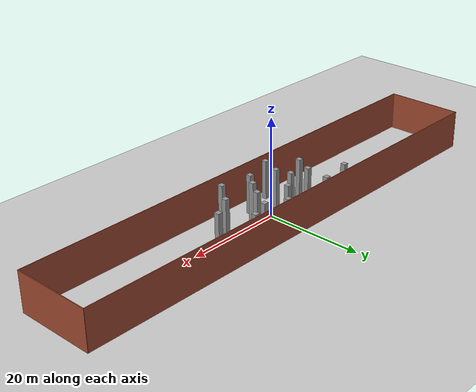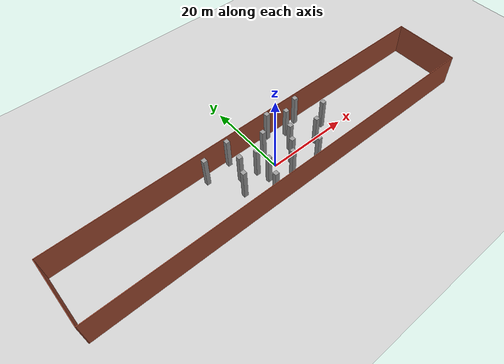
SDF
<sdf version="1.7">
 <world name="default">
  <model name="ground_plane">
   <static>1</static>
   <link name="link">
    <collision name="collision">
     <geometry><plane><normal>0 0 1</normal><size>100 100</size></plane></geometry>
     <surface>
      <contact><collide_bitmask>65535</collide_bitmask></contact>
      <friction><ode><mu>100</mu><mu2>50</mu2></ode></friction>
     </surface>
    </collision>
    <visual name="visual">
     <cast_shadows>0</cast_shadows>
     <geometry><plane><normal>0 0 1</normal><size>100 100</size></plane></geometry>
     <material>
      <script><uri>file://media/materials/scripts/gazebo.material</uri><name>Gazebo/Grey</name></script>
     </material>
    </visual>
   </link>
  </model>
  <model name="rect_slim_long">
   <link name="Wall_R">
    <pose>0 -8 0 0 -0 3.14159</pose>
    <visual name="Wall_R_Visual">
     <pose>0 0 4 0 -0 0</pose>
     <geometry><box><size>100 0.15 8</size></box></geometry>
     <material>
      <script><uri>file://media/materials/scripts/gazebo.material</uri><name>Gazebo/Bricks</name></script>
      <ambient>1 1 1 1</ambient>
      <shader type="pixel"/>
     </material>
     <meta><layer>0</layer></meta>
    </visual>
    <collision name="Wall_R_Collision">
     <pose>0 0 4 0 -0 0</pose>
     <geometry><box><size>100 0.15 8</size></box></geometry>
     <surface>
      <friction>
       <ode><mu>1</mu><mu2>1</mu2><fdir1>0 0 0</fdir1><slip1>0</slip1><slip2>0</slip2></ode>
       <torsional>
        <coefficient>1</coefficient>
        <patch_radius>0</patch_radius>
        <surface_radius>0</surface_radius>
        <use_patch_radius>1</use_patch_radius>
        <ode><slip>0</slip></ode>
       </torsional>
      </friction>
      <bounce><restitution_coefficient>0</restitution_coefficient><threshold>1e+06</threshold></bounce>
      <contact>
       <collide_without_contact>0</collide_without_contact>
       <collide_without_contact_bitmask>1</collide_without_contact_bitmask>
       <collide_bitmask>1</collide_bitmask>
       <ode>
        <soft_cfm>0</soft_cfm>
        <soft_erp>0.2</soft_erp>
        <kp>1e+13</kp>
        <kd>1</kd>
        <max_vel>0.01</max_vel>
        <min_depth>0</min_depth>
       </ode>
       <bullet>
        <split_impulse>1</split_impulse>
        <split_impulse_penetration_threshold>-0.01</split_impulse_penetration_threshold>
        <soft_cfm>0</soft_cfm>
        <soft_erp>0.2</soft_erp>
        <kp>1e+13</kp>
        <kd>1</kd>
       </bullet>
      </contact>
     </surface>
    </collision>
   </link>
   <link name="Wall_D">
    <pose>-50 0 0 0 0 -1.5708</pose>
    <visual name="Wall_D_Visual">
     <pose>0 0 4 0 -0 0</pose>
     <geometry><box><size>16.15 0.15 8</size></box></geometry>
     <material>
      <script><uri>file://media/materials/scripts/gazebo.material</uri><name>Gazebo/Bricks</name></script>
      <ambient>1 1 1 1</ambient>
      <shader type="pixel"/>
     </material>
     <meta><layer>0</layer></meta>
    </visual>
    <collision name="Wall_D_Collision">
     <pose>0 0 4 0 -0 0</pose>
     <geometry><box><size>16.15 0.15 8</size></box></geometry>
     <surface>
      <friction>
       <ode><mu>1</mu><mu2>1</mu2><fdir1>0 0 0</fdir1><slip1>0</slip1><slip2>0</slip2></ode>
       <torsional>
        <coefficient>1</coefficient>
        <patch_radius>0</patch_radius>
        <surface_radius>0</surface_radius>
        <use_patch_radius>1</use_patch_radius>
        <ode><slip>0</slip></ode>
       </torsional>
      </friction>
      <bounce><restitution_coefficient>0</restitution_coefficient><threshold>1e+06</threshold></bounce>
      <contact>
       <collide_without_contact>0</collide_without_contact>
       <collide_without_contact_bitmask>1</collide_without_contact_bitmask>
       <collide_bitmask>1</collide_bitmask>
       <ode>
        <soft_cfm>0</soft_cfm>
        <soft_erp>0.2</soft_erp>
        <kp>1e+13</kp>
        <kd>1</kd>
        <max_vel>0.01</max_vel>
        <min_depth>0</min_depth>
       </ode>
       <bullet>
        <split_impulse>1</split_impulse>
        <split_impulse_penetration_threshold>-0.01</split_impulse_penetration_threshold>
        <soft_cfm>0</soft_cfm>
        <soft_erp>0.2</soft_erp>
        <kp>1e+13</kp>
        <kd>1</kd>
       </bullet>
      </contact>
     </surface>
    </collision>
   </link>
   <link name="Wall_L">
    <pose>0 8 0 0 -0 0</pose>
    <visual name="Wall_L_Visual">
     <pose>0 0 4 0 -0 0</pose>
     <geometry><box><size>100 0.15 8</size></box></geometry>
     <material>
      <script><uri>file://media/materials/scripts/gazebo.material</uri><name>Gazebo/Bricks</name></script>
      <ambient>1 1 1 1</ambient>
      <shader type="pixel"/>
     </material>
     <meta><layer>0</layer></meta>
    </visual>
    <collision name="Wall_L_Collision">
     <pose>0 0 4 0 -0 0</pose>
     <geometry><box><size>100 0.15 8</size></box></geometry>
     <surface>
      <friction>
       <ode><mu>1</mu><mu2>1</mu2><fdir1>0 0 0</fdir1><slip1>0</slip1><slip2>0</slip2></ode>
       <torsional>
        <coefficient>1</coefficient>
        <patch_radius>0</patch_radius>
        <surface_radius>0</surface_radius>
        <use_patch_radius>1</use_patch_radius>
        <ode><slip>0</slip></ode>
       </torsional>
      </friction>
      <bounce><restitution_coefficient>0</restitution_coefficient><threshold>1e+06</threshold></bounce>
      <contact>
       <collide_without_contact>0</collide_without_contact>
       <collide_without_contact_bitmask>1</collide_without_contact_bitmask>
       <collide_bitmask>1</collide_bitmask>
       <ode>
        <soft_cfm>0</soft_cfm>
        <soft_erp>0.2</soft_erp>
        <kp>1e+13</kp>
        <kd>1</kd>
        <max_vel>0.01</max_vel>
        <min_depth>0</min_depth>
       </ode>
       <bullet>
        <split_impulse>1</split_impulse>
        <split_impulse_penetration_threshold>-0.01</split_impulse_penetration_threshold>
        <soft_cfm>0</soft_cfm>
        <soft_erp>0.2</soft_erp>
        <kp>1e+13</kp>
        <kd>1</kd>
       </bullet>
      </contact>
     </surface>
    </collision>
   </link>
   <link name="Wall_U">
    <pose>50 0 0 0 0 -1.5708</pose>
    <visual name="Wall_U_Visual">
     <pose>0 0 4 0 -0 0</pose>
     <geometry><box><size>16.15 0.15 8</size></box></geometry>
     <material>
      <script><uri>file://media/materials/scripts/gazebo.material</uri><name>Gazebo/Bricks</name></script>
      <ambient>1 1 1 1</ambient>
      <shader type="pixel"/>
     </material>
     <meta><layer>0</layer></meta>
    </visual>
    <collision name="Wall_U_Collision">
     <pose>0 0 4 0 -0 0</pose>
     <geometry><box><size>16.15 0.15 8</size></box></geometry>
     <surface>
      <friction>
       <ode><mu>1</mu><mu2>1</mu2><fdir1>0 0 0</fdir1><slip1>0</slip1><slip2>0</slip2></ode>
       <torsional>
        <coefficient>1</coefficient>
        <patch_radius>0</patch_radius>
        <surface_radius>0</surface_radius>
        <use_patch_radius>1</use_patch_radius>
        <ode><slip>0</slip></ode>
       </torsional>
      </friction>
      <bounce><restitution_coefficient>0</restitution_coefficient><threshold>1e+06</threshold></bounce>
      <contact>
       <collide_without_contact>0</collide_without_contact>
       <collide_without_contact_bitmask>1</collide_without_contact_bitmask>
       <collide_bitmask>1</collide_bitmask>
       <ode>
        <soft_cfm>0</soft_cfm>
        <soft_erp>0.2</soft_erp>
        <kp>1e+13</kp>
        <kd>1</kd>
        <max_vel>0.01</max_vel>
        <min_depth>0</min_depth>
       </ode>
       <bullet>
        <split_impulse>1</split_impulse>
        <split_impulse_penetration_threshold>-0.01</split_impulse_penetration_threshold>
        <soft_cfm>0</soft_cfm>
        <soft_erp>0.2</soft_erp>
        <kp>1e+13</kp>
        <kd>1</kd>
       </bullet>
      </contact>
     </surface>
    </collision>
   </link>
   <static>1</static>
  </model>
  <model name="unit_box_static42_clone_35_clone_12">
   <link name="link">
    <inertial>
     <mass>1</mass>
     <inertia>
      <ixx>0.166667</ixx>
      <ixy>0</ixy>
      <ixz>0</ixz>
      <iyy>0.166667</iyy>
      <iyz>0</iyz>
      <izz>0.166667</izz>
     </inertia>
    </inertial>
    <visual name="visual">
     <geometry><box><size>1 1 8</size></box></geometry>
     <material>
      <script><name>Gazebo/Grey</name><uri>file://media/materials/scripts/gazebo.material</uri></script>
      <shader type="pixel"/>
     </material>
    </visual>
    <collision name="collision">
     <geometry><box><size>1 1 8</size></box></geometry>
     <surface>
      <friction>
       <ode><mu>1</mu><mu2>1</mu2><fdir1>0 0 0</fdir1><slip1>0</slip1><slip2>0</slip2></ode>
       <torsional>
        <coefficient>1</coefficient>
        <patch_radius>0</patch_radius>
        <surface_radius>0</surface_radius>
        <use_patch_radius>1</use_patch_radius>
        <ode><slip>0</slip></ode>
       </torsional>
      </friction>
      <bounce><restitution_coefficient>0</restitution_coefficient><threshold>1e+06</threshold></bounce>
      <contact>
       <collide_without_contact>0</collide_without_contact>
       <collide_without_contact_bitmask>1</collide_without_contact_bitmask>
       <collide_bitmask>1</collide_bitmask>
       <ode>
        <soft_cfm>0</soft_cfm>
        <soft_erp>0.2</soft_erp>
        <kp>1e+13</kp>
        <kd>1</kd>
        <max_vel>0.01</max_vel>
        <min_depth>0</min_depth>
       </ode>
       <bullet>
        <split_impulse>1</split_impulse>
        <split_impulse_penetration_threshold>-0.01</split_impulse_penetration_threshold>
        <soft_cfm>0</soft_cfm>
        <soft_erp>0.2</soft_erp>
        <kp>1e+13</kp>
        <kd>1</kd>
       </bullet>
      </contact>
     </surface>
    </collision>
   </link>
   <static>1</static>
   <pose>5.73464 1.61226 4 0 -0 0</pose>
  </model>
  <model name="unit_box_static42_clone_35_clone_14">
   <link name="link">
    <inertial>
     <mass>1</mass>
     <inertia>
      <ixx>0.166667</ixx>
      <ixy>0</ixy>
      <ixz>0</ixz>
      <iyy>0.166667</iyy>
      <iyz>0</iyz>
      <izz>0.166667</izz>
     </inertia>
    </inertial>
    <visual name="visual">
     <geometry><box><size>1 1 8</size></box></geometry>
     <material>
      <script><name>Gazebo/Grey</name><uri>file://media/materials/scripts/gazebo.material</uri></script>
      <shader type="pixel"/>
     </material>
    </visual>
    <collision name="collision">
     <geometry><box><size>1 1 8</size></box></geometry>
     <surface>
      <friction>
       <ode><mu>1</mu><mu2>1</mu2><fdir1>0 0 0</fdir1><slip1>0</slip1><slip2>0</slip2></ode>
       <torsional>
        <coefficient>1</coefficient>
        <patch_radius>0</patch_radius>
        <surface_radius>0</surface_radius>
        <use_patch_radius>1</use_patch_radius>
        <ode><slip>0</slip></ode>
       </torsional>
      </friction>
      <bounce><restitution_coefficient>0</restitution_coefficient><threshold>1e+06</threshold></bounce>
      <contact>
       <collide_without_contact>0</collide_without_contact>
       <collide_without_contact_bitmask>1</collide_without_contact_bitmask>
       <collide_bitmask>1</collide_bitmask>
       <ode>
        <soft_cfm>0</soft_cfm>
        <soft_erp>0.2</soft_erp>
        <kp>1e+13</kp>
        <kd>1</kd>
        <max_vel>0.01</max_vel>
        <min_depth>0</min_depth>
       </ode>
       <bullet>
        <split_impulse>1</split_impulse>
        <split_impulse_penetration_threshold>-0.01</split_impulse_penetration_threshold>
        <soft_cfm>0</soft_cfm>
        <soft_erp>0.2</soft_erp>
        <kp>1e+13</kp>
        <kd>1</kd>
       </bullet>
      </contact>
     </surface>
    </collision>
   </link>
   <static>1</static>
   <pose>0 4 4 0 -0 0</pose>
  </model>
  <model name="unit_box_static42_clone_35_clone_15">
   <link name="link">
    <inertial>
     <mass>1</mass>
     <inertia>
      <ixx>0.166667</ixx>
      <ixy>0</ixy>
      <ixz>0</ixz>
      <iyy>0.166667</iyy>
      <iyz>0</iyz>
      <izz>0.166667</izz>
     </inertia>
    </inertial>
    <visual name="visual">
     <geometry><box><size>1 1 8</size></box></geometry>
     <material>
      <script><name>Gazebo/Grey</name><uri>file://media/materials/scripts/gazebo.material</uri></script>
      <shader type="pixel"/>
     </material>
    </visual>
    <collision name="collision">
     <geometry><box><size>1 1 8</size></box></geometry>
     <surface>
      <friction>
       <ode><mu>1</mu><mu2>1</mu2><fdir1>0 0 0</fdir1><slip1>0</slip1><slip2>0</slip2></ode>
       <torsional>
        <coefficient>1</coefficient>
        <patch_radius>0</patch_radius>
        <surface_radius>0</surface_radius>
        <use_patch_radius>1</use_patch_radius>
        <ode><slip>0</slip></ode>
       </torsional>
      </friction>
      <bounce><restitution_coefficient>0</restitution_coefficient><threshold>1e+06</threshold></bounce>
      <contact>
       <collide_without_contact>0</collide_without_contact>
       <collide_without_contact_bitmask>1</collide_without_contact_bitmask>
       <collide_bitmask>1</collide_bitmask>
       <ode>
        <soft_cfm>0</soft_cfm>
        <soft_erp>0.2</soft_erp>
        <kp>1e+13</kp>
        <kd>1</kd>
        <max_vel>0.01</max_vel>
        <min_depth>0</min_depth>
       </ode>
       <bullet>
        <split_impulse>1</split_impulse>
        <split_impulse_penetration_threshold>-0.01</split_impulse_penetration_threshold>
        <soft_cfm>0</soft_cfm>
        <soft_erp>0.2</soft_erp>
        <kp>1e+13</kp>
        <kd>1</kd>
       </bullet>
      </contact>
     </surface>
    </collision>
   </link>
   <static>1</static>
   <pose>12 7 4 0 -0 0</pose>
  </model>
  <model name="unit_box_static42_clone_35_clone_16">
   <link name="link">
    <inertial>
     <mass>1</mass>
     <inertia>
      <ixx>0.166667</ixx>
      <ixy>0</ixy>
      <ixz>0</ixz>
      <iyy>0.166667</iyy>
      <iyz>0</iyz>
      <izz>0.166667</izz>
     </inertia>
    </inertial>
    <visual name="visual">
     <geometry><box><size>1 1 8</size></box></geometry>
     <material>
      <script><name>Gazebo/Grey</name><uri>file://media/materials/scripts/gazebo.material</uri></script>
      <shader type="pixel"/>
     </material>
    </visual>
    <collision name="collision">
     <geometry><box><size>1 1 8</size></box></geometry>
     <surface>
      <friction>
       <ode><mu>1</mu><mu2>1</mu2><fdir1>0 0 0</fdir1><slip1>0</slip1><slip2>0</slip2></ode>
       <torsional>
        <coefficient>1</coefficient>
        <patch_radius>0</patch_radius>
        <surface_radius>0</surface_radius>
        <use_patch_radius>1</use_patch_radius>
        <ode><slip>0</slip></ode>
       </torsional>
      </friction>
      <bounce><restitution_coefficient>0</restitution_coefficient><threshold>1e+06</threshold></bounce>
      <contact>
       <collide_without_contact>0</collide_without_contact>
       <collide_without_contact_bitmask>1</collide_without_contact_bitmask>
       <collide_bitmask>1</collide_bitmask>
       <ode>
        <soft_cfm>0</soft_cfm>
        <soft_erp>0.2</soft_erp>
        <kp>1e+13</kp>
        <kd>1</kd>
        <max_vel>0.01</max_vel>
        <min_depth>0</min_depth>
       </ode>
       <bullet>
        <split_impulse>1</split_impulse>
        <split_impulse_penetration_threshold>-0.01</split_impulse_penetration_threshold>
        <soft_cfm>0</soft_cfm>
        <soft_erp>0.2</soft_erp>
        <kp>1e+13</kp>
        <kd>1</kd>
       </bullet>
      </contact>
     </surface>
    </collision>
   </link>
   <static>1</static>
   <pose>1.50816 -4 4 0 -0 0</pose>
  </model>
  <model name="unit_box_static42_clone_35_clone_17">
   <link name="link">
    <inertial>
     <mass>1</mass>
     <inertia>
      <ixx>0.166667</ixx>
      <ixy>0</ixy>
      <ixz>0</ixz>
      <iyy>0.166667</iyy>
      <iyz>0</iyz>
      <izz>0.166667</izz>
     </inertia>
    </inertial>
    <visual name="visual">
     <geometry><box><size>1 1 8</size></box></geometry>
     <material>
      <script><name>Gazebo/Grey</name><uri>file://media/materials/scripts/gazebo.material</uri></script>
      <shader type="pixel"/>
     </material>
    </visual>
    <collision name="collision">
     <geometry><box><size>1 1 8</size></box></geometry>
     <surface>
      <friction>
       <ode><mu>1</mu><mu2>1</mu2><fdir1>0 0 0</fdir1><slip1>0</slip1><slip2>0</slip2></ode>
       <torsional>
        <coefficient>1</coefficient>
        <patch_radius>0</patch_radius>
        <surface_radius>0</surface_radius>
        <use_patch_radius>1</use_patch_radius>
        <ode><slip>0</slip></ode>
       </torsional>
      </friction>
      <bounce><restitution_coefficient>0</restitution_coefficient><threshold>1e+06</threshold></bounce>
      <contact>
       <collide_without_contact>0</collide_without_contact>
       <collide_without_contact_bitmask>1</collide_without_contact_bitmask>
       <collide_bitmask>1</collide_bitmask>
       <ode>
        <soft_cfm>0</soft_cfm>
        <soft_erp>0.2</soft_erp>
        <kp>1e+13</kp>
        <kd>1</kd>
        <max_vel>0.01</max_vel>
        <min_depth>0</min_depth>
       </ode>
       <bullet>
        <split_impulse>1</split_impulse>
        <split_impulse_penetration_threshold>-0.01</split_impulse_penetration_threshold>
        <soft_cfm>0</soft_cfm>
        <soft_erp>0.2</soft_erp>
        <kp>1e+13</kp>
        <kd>1</kd>
       </bullet>
      </contact>
     </surface>
    </collision>
   </link>
   <static>1</static>
   <pose>8 -5 4 0 -0 0</pose>
  </model>
  <model name="unit_box_static42_clone_35_clone_18">
   <link name="link">
    <inertial>
     <mass>1</mass>
     <inertia>
      <ixx>0.166667</ixx>
      <ixy>0</ixy>
      <ixz>0</ixz>
      <iyy>0.166667</iyy>
      <iyz>0</iyz>
      <izz>0.166667</izz>
     </inertia>
    </inertial>
    <visual name="visual">
     <geometry><box><size>1 1 8</size></box></geometry>
     <material>
      <script><name>Gazebo/Grey</name><uri>file://media/materials/scripts/gazebo.material</uri></script>
      <shader type="pixel"/>
     </material>
    </visual>
    <collision name="collision">
     <geometry><box><size>1 1 8</size></box></geometry>
     <surface>
      <friction>
       <ode><mu>1</mu><mu2>1</mu2><fdir1>0 0 0</fdir1><slip1>0</slip1><slip2>0</slip2></ode>
       <torsional>
        <coefficient>1</coefficient>
        <patch_radius>0</patch_radius>
        <surface_radius>0</surface_radius>
        <use_patch_radius>1</use_patch_radius>
        <ode><slip>0</slip></ode>
       </torsional>
      </friction>
      <bounce><restitution_coefficient>0</restitution_coefficient><threshold>1e+06</threshold></bounce>
      <contact>
       <collide_without_contact>0</collide_without_contact>
       <collide_without_contact_bitmask>1</collide_without_contact_bitmask>
       <collide_bitmask>1</collide_bitmask>
       <ode>
        <soft_cfm>0</soft_cfm>
        <soft_erp>0.2</soft_erp>
        <kp>1e+13</kp>
        <kd>1</kd>
        <max_vel>0.01</max_vel>
        <min_depth>0</min_depth>
       </ode>
       <bullet>
        <split_impulse>1</split_impulse>
        <split_impulse_penetration_threshold>-0.01</split_impulse_penetration_threshold>
        <soft_cfm>0</soft_cfm>
        <soft_erp>0.2</soft_erp>
        <kp>1e+13</kp>
        <kd>1</kd>
       </bullet>
      </contact>
     </surface>
    </collision>
   </link>
   <static>1</static>
   <pose>3.50845 -1.50391 4 0 -0 0</pose>
  </model>
  <model name="unit_box_static42_clone_35_clone_19">
   <link name="link">
    <inertial>
     <mass>1</mass>
     <inertia>
      <ixx>0.166667</ixx>
      <ixy>0</ixy>
      <ixz>0</ixz>
      <iyy>0.166667</iyy>
      <iyz>0</iyz>
      <izz>0.166667</izz>
     </inertia>
    </inertial>
    <visual name="visual">
     <geometry><box><size>1 1 8</size></box></geometry>
     <material>
      <script><name>Gazebo/Grey</name><uri>file://media/materials/scripts/gazebo.material</uri></script>
      <shader type="pixel"/>
     </material>
    </visual>
    <collision name="collision">
     <geometry><box><size>1 1 8</size></box></geometry>
     <surface>
      <friction>
       <ode><mu>1</mu><mu2>1</mu2><fdir1>0 0 0</fdir1><slip1>0</slip1><slip2>0</slip2></ode>
       <torsional>
        <coefficient>1</coefficient>
        <patch_radius>0</patch_radius>
        <surface_radius>0</surface_radius>
        <use_patch_radius>1</use_patch_radius>
        <ode><slip>0</slip></ode>
       </torsional>
      </friction>
      <bounce><restitution_coefficient>0</restitution_coefficient><threshold>1e+06</threshold></bounce>
      <contact>
       <collide_without_contact>0</collide_without_contact>
       <collide_without_contact_bitmask>1</collide_without_contact_bitmask>
       <collide_bitmask>1</collide_bitmask>
       <ode>
        <soft_cfm>0</soft_cfm>
        <soft_erp>0.2</soft_erp>
        <kp>1e+13</kp>
        <kd>1</kd>
        <max_vel>0.01</max_vel>
        <min_depth>0</min_depth>
       </ode>
       <bullet>
        <split_impulse>1</split_impulse>
        <split_impulse_penetration_threshold>-0.01</split_impulse_penetration_threshold>
        <soft_cfm>0</soft_cfm>
        <soft_erp>0.2</soft_erp>
        <kp>1e+13</kp>
        <kd>1</kd>
       </bullet>
      </contact>
     </surface>
    </collision>
   </link>
   <static>1</static>
   <pose>-7.43587 7 4 0 -0 0</pose>
  </model>
  <model name="unit_box_static42_clone_35_clone_20">
   <link name="link">
    <inertial>
     <mass>1</mass>
     <inertia>
      <ixx>0.166667</ixx>
      <ixy>0</ixy>
      <ixz>0</ixz>
      <iyy>0.166667</iyy>
      <iyz>0</iyz>
      <izz>0.166667</izz>
     </inertia>
    </inertial>
    <visual name="visual">
     <geometry><box><size>1 1 8</size></box></geometry>
     <material>
      <script><name>Gazebo/Grey</name><uri>file://media/materials/scripts/gazebo.material</uri></script>
      <shader type="pixel"/>
     </material>
    </visual>
    <collision name="collision">
     <geometry><box><size>1 1 8</size></box></geometry>
     <surface>
      <friction>
       <ode><mu>1</mu><mu2>1</mu2><fdir1>0 0 0</fdir1><slip1>0</slip1><slip2>0</slip2></ode>
       <torsional>
        <coefficient>1</coefficient>
        <patch_radius>0</patch_radius>
        <surface_radius>0</surface_radius>
        <use_patch_radius>1</use_patch_radius>
        <ode><slip>0</slip></ode>
       </torsional>
      </friction>
      <bounce><restitution_coefficient>0</restitution_coefficient><threshold>1e+06</threshold></bounce>
      <contact>
       <collide_without_contact>0</collide_without_contact>
       <collide_without_contact_bitmask>1</collide_without_contact_bitmask>
       <collide_bitmask>1</collide_bitmask>
       <ode>
        <soft_cfm>0</soft_cfm>
        <soft_erp>0.2</soft_erp>
        <kp>1e+13</kp>
        <kd>1</kd>
        <max_vel>0.01</max_vel>
        <min_depth>0</min_depth>
       </ode>
       <bullet>
        <split_impulse>1</split_impulse>
        <split_impulse_penetration_threshold>-0.01</split_impulse_penetration_threshold>
        <soft_cfm>0</soft_cfm>
        <soft_erp>0.2</soft_erp>
        <kp>1e+13</kp>
        <kd>1</kd>
       </bullet>
      </contact>
     </surface>
    </collision>
   </link>
   <static>1</static>
   <pose>-14 6 4 0 -0 0</pose>
  </model>
  <model name="unit_box_static42_clone_35_clone_21">
   <link name="link">
    <inertial>
     <mass>1</mass>
     <inertia>
      <ixx>0.166667</ixx>
      <ixy>0</ixy>
      <ixz>0</ixz>
      <iyy>0.166667</iyy>
      <iyz>0</iyz>
      <izz>0.166667</izz>
     </inertia>
    </inertial>
    <visual name="visual">
     <geometry><box><size>1 1 8</size></box></geometry>
     <material>
      <script><name>Gazebo/Grey</name><uri>file://media/materials/scripts/gazebo.material</uri></script>
      <shader type="pixel"/>
     </material>
    </visual>
    <collision name="collision">
     <geometry><box><size>1 1 8</size></box></geometry>
     <surface>
      <friction>
       <ode><mu>1</mu><mu2>1</mu2><fdir1>0 0 0</fdir1><slip1>0</slip1><slip2>0</slip2></ode>
       <torsional>
        <coefficient>1</coefficient>
        <patch_radius>0</patch_radius>
        <surface_radius>0</surface_radius>
        <use_patch_radius>1</use_patch_radius>
        <ode><slip>0</slip></ode>
       </torsional>
      </friction>
      <bounce><restitution_coefficient>0</restitution_coefficient><threshold>1e+06</threshold></bounce>
      <contact>
       <collide_without_contact>0</collide_without_contact>
       <collide_without_contact_bitmask>1</collide_without_contact_bitmask>
       <collide_bitmask>1</collide_bitmask>
       <ode>
        <soft_cfm>0</soft_cfm>
        <soft_erp>0.2</soft_erp>
        <kp>1e+13</kp>
        <kd>1</kd>
        <max_vel>0.01</max_vel>
        <min_depth>0</min_depth>
       </ode>
       <bullet>
        <split_impulse>1</split_impulse>
        <split_impulse_penetration_threshold>-0.01</split_impulse_penetration_threshold>
        <soft_cfm>0</soft_cfm>
        <soft_erp>0.2</soft_erp>
        <kp>1e+13</kp>
        <kd>1</kd>
       </bullet>
      </contact>
     </surface>
    </collision>
   </link>
   <static>1</static>
   <pose>-3.48153 -2.01603 4 0 -0 0</pose>
  </model>
  <model name="unit_box_static42_clone_35_clone_22">
   <link name="link">
    <inertial>
     <mass>1</mass>
     <inertia>
      <ixx>0.166667</ixx>
      <ixy>0</ixy>
      <ixz>0</ixz>
      <iyy>0.166667</iyy>
      <iyz>0</iyz>
      <izz>0.166667</izz>
     </inertia>
    </inertial>
    <visual name="visual">
     <geometry><box><size>1 1 8</size></box></geometry>
     <material>
      <script><name>Gazebo/Grey</name><uri>file://media/materials/scripts/gazebo.material</uri></script>
      <shader type="pixel"/>
     </material>
    </visual>
    <collision name="collision">
     <geometry><box><size>1 1 8</size></box></geometry>
     <surface>
      <friction>
       <ode><mu>1</mu><mu2>1</mu2><fdir1>0 0 0</fdir1><slip1>0</slip1><slip2>0</slip2></ode>
       <torsional>
        <coefficient>1</coefficient>
        <patch_radius>0</patch_radius>
        <surface_radius>0</surface_radius>
        <use_patch_radius>1</use_patch_radius>
        <ode><slip>0</slip></ode>
       </torsional>
      </friction>
      <bounce><restitution_coefficient>0</restitution_coefficient><threshold>1e+06</threshold></bounce>
      <contact>
       <collide_without_contact>0</collide_without_contact>
       <collide_without_contact_bitmask>1</collide_without_contact_bitmask>
       <collide_bitmask>1</collide_bitmask>
       <ode>
        <soft_cfm>0</soft_cfm>
        <soft_erp>0.2</soft_erp>
        <kp>1e+13</kp>
        <kd>1</kd>
        <max_vel>0.01</max_vel>
        <min_depth>0</min_depth>
       </ode>
       <bullet>
        <split_impulse>1</split_impulse>
        <split_impulse_penetration_threshold>-0.01</split_impulse_penetration_threshold>
        <soft_cfm>0</soft_cfm>
        <soft_erp>0.2</soft_erp>
        <kp>1e+13</kp>
        <kd>1</kd>
       </bullet>
      </contact>
     </surface>
    </collision>
   </link>
   <static>1</static>
   <pose>-8 2 4 0 -0 0</pose>
  </model>
  <model name="unit_box_static42_clone_35_clone_25">
   <link name="link">
    <inertial>
     <mass>1</mass>
     <inertia>
      <ixx>0.166667</ixx>
      <ixy>0</ixy>
      <ixz>0</ixz>
      <iyy>0.166667</iyy>
      <iyz>0</iyz>
      <izz>0.166667</izz>
     </inertia>
    </inertial>
    <visual name="visual">
     <geometry><box><size>1 1 8</size></box></geometry>
     <material>
      <script><name>Gazebo/Grey</name><uri>file://media/materials/scripts/gazebo.material</uri></script>
      <shader type="pixel"/>
     </material>
    </visual>
    <collision name="collision">
     <geometry><box><size>1 1 8</size></box></geometry>
     <surface>
      <friction>
       <ode><mu>1</mu><mu2>1</mu2><fdir1>0 0 0</fdir1><slip1>0</slip1><slip2>0</slip2></ode>
       <torsional>
        <coefficient>1</coefficient>
        <patch_radius>0</patch_radius>
        <surface_radius>0</surface_radius>
        <use_patch_radius>1</use_patch_radius>
        <ode><slip>0</slip></ode>
       </torsional>
      </friction>
      <bounce><restitution_coefficient>0</restitution_coefficient><threshold>1e+06</threshold></bounce>
      <contact>
       <collide_without_contact>0</collide_without_contact>
       <collide_without_contact_bitmask>1</collide_without_contact_bitmask>
       <collide_bitmask>1</collide_bitmask>
       <ode>
        <soft_cfm>0</soft_cfm>
        <soft_erp>0.2</soft_erp>
        <kp>1e+13</kp>
        <kd>1</kd>
        <max_vel>0.01</max_vel>
        <min_depth>0</min_depth>
       </ode>
       <bullet>
        <split_impulse>1</split_impulse>
        <split_impulse_penetration_threshold>-0.01</split_impulse_penetration_threshold>
        <soft_cfm>0</soft_cfm>
        <soft_erp>0.2</soft_erp>
        <kp>1e+13</kp>
        <kd>1</kd>
       </bullet>
      </contact>
     </surface>
    </collision>
   </link>
   <static>1</static>
   <pose>-5 -6 4 0 -0 0</pose>
  </model>
  <model name="unit_box_static42_clone_35_clone_42">
   <link name="link">
    <inertial>
     <mass>1</mass>
     <inertia>
      <ixx>0.166667</ixx>
      <ixy>0</ixy>
      <ixz>0</ixz>
      <iyy>0.166667</iyy>
      <iyz>0</iyz>
      <izz>0.166667</izz>
     </inertia>
    </inertial>
    <visual name="visual">
     <geometry><box><size>1 1 8</size></box></geometry>
     <material>
      <script><name>Gazebo/Grey</name><uri>file://media/materials/scripts/gazebo.material</uri></script>
      <shader type="pixel"/>
     </material>
    </visual>
    <collision name="collision">
     <geometry><box><size>1 1 8</size></box></geometry>
     <surface>
      <friction>
       <ode><mu>1</mu><mu2>1</mu2><fdir1>0 0 0</fdir1><slip1>0</slip1><slip2>0</slip2></ode>
       <torsional>
        <coefficient>1</coefficient>
        <patch_radius>0</patch_radius>
        <surface_radius>0</surface_radius>
        <use_patch_radius>1</use_patch_radius>
        <ode><slip>0</slip></ode>
       </torsional>
      </friction>
      <bounce><restitution_coefficient>0</restitution_coefficient><threshold>1e+06</threshold></bounce>
      <contact>
       <collide_without_contact>0</collide_without_contact>
       <collide_without_contact_bitmask>1</collide_without_contact_bitmask>
       <collide_bitmask>1</collide_bitmask>
       <ode>
        <soft_cfm>0</soft_cfm>
        <soft_erp>0.2</soft_erp>
        <kp>1e+13</kp>
        <kd>1</kd>
        <max_vel>0.01</max_vel>
        <min_depth>0</min_depth>
       </ode>
       <bullet>
        <split_impulse>1</split_impulse>
        <split_impulse_penetration_threshold>-0.01</split_impulse_penetration_threshold>
        <soft_cfm>0</soft_cfm>
        <soft_erp>0.2</soft_erp>
        <kp>1e+13</kp>
        <kd>1</kd>
       </bullet>
      </contact>
     </surface>
    </collision>
   </link>
   <static>1</static>
   <pose>-4.28403 1 4 0 -0 0</pose>
  </model>
  <model name="unit_box_static42_clone_35_clone_43">
   <link name="link">
    <inertial>
     <mass>1</mass>
     <inertia>
      <ixx>0.166667</ixx>
      <ixy>0</ixy>
      <ixz>0</ixz>
      <iyy>0.166667</iyy>
      <iyz>0</iyz>
      <izz>0.166667</izz>
     </inertia>
    </inertial>
    <visual name="visual">
     <geometry><box><size>1 1 8</size></box></geometry>
     <material>
      <script><name>Gazebo/Grey</name><uri>file://media/materials/scripts/gazebo.material</uri></script>
      <shader type="pixel"/>
     </material>
    </visual>
    <collision name="collision">
     <geometry><box><size>1 1 8</size></box></geometry>
     <surface>
      <friction>
       <ode><mu>1</mu><mu2>1</mu2><fdir1>0 0 0</fdir1><slip1>0</slip1><slip2>0</slip2></ode>
       <torsional>
        <coefficient>1</coefficient>
        <patch_radius>0</patch_radius>
        <surface_radius>0</surface_radius>
        <use_patch_radius>1</use_patch_radius>
        <ode><slip>0</slip></ode>
       </torsional>
      </friction>
      <bounce><restitution_coefficient>0</restitution_coefficient><threshold>1e+06</threshold></bounce>
      <contact>
       <collide_without_contact>0</collide_without_contact>
       <collide_without_contact_bitmask>1</collide_without_contact_bitmask>
       <collide_bitmask>1</collide_bitmask>
       <ode>
        <soft_cfm>0</soft_cfm>
        <soft_erp>0.2</soft_erp>
        <kp>1e+13</kp>
        <kd>1</kd>
        <max_vel>0.01</max_vel>
        <min_depth>0</min_depth>
       </ode>
       <bullet>
        <split_impulse>1</split_impulse>
        <split_impulse_penetration_threshold>-0.01</split_impulse_penetration_threshold>
        <soft_cfm>0</soft_cfm>
        <soft_erp>0.2</soft_erp>
        <kp>1e+13</kp>
        <kd>1</kd>
       </bullet>
      </contact>
     </surface>
    </collision>
   </link>
   <static>1</static>
   <pose>-9.85472 -1.64309 4 0 -0 0</pose>
  </model>
  <model name="unit_box_static42_clone_35_clone_45">
   <link name="link">
    <inertial>
     <mass>1</mass>
     <inertia>
      <ixx>0.166667</ixx>
      <ixy>0</ixy>
      <ixz>0</ixz>
      <iyy>0.166667</iyy>
      <iyz>0</iyz>
      <izz>0.166667</izz>
     </inertia>
    </inertial>
    <visual name="visual">
     <geometry><box><size>1 1 8</size></box></geometry>
     <material>
      <script><name>Gazebo/Grey</name><uri>file://media/materials/scripts/gazebo.material</uri></script>
      <shader type="pixel"/>
     </material>
    </visual>
    <collision name="collision">
     <geometry><box><size>1 1 8</size></box></geometry>
     <surface>
      <friction>
       <ode><mu>1</mu><mu2>1</mu2><fdir1>0 0 0</fdir1><slip1>0</slip1><slip2>0</slip2></ode>
       <torsional>
        <coefficient>1</coefficient>
        <patch_radius>0</patch_radius>
        <surface_radius>0</surface_radius>
        <use_patch_radius>1</use_patch_radius>
        <ode><slip>0</slip></ode>
       </torsional>
      </friction>
      <bounce><restitution_coefficient>0</restitution_coefficient><threshold>1e+06</threshold></bounce>
      <contact>
       <collide_without_contact>0</collide_without_contact>
       <collide_without_contact_bitmask>1</collide_without_contact_bitmask>
       <collide_bitmask>1</collide_bitmask>
       <ode>
        <soft_cfm>0</soft_cfm>
        <soft_erp>0.2</soft_erp>
        <kp>1e+13</kp>
        <kd>1</kd>
        <max_vel>0.01</max_vel>
        <min_depth>0</min_depth>
       </ode>
       <bullet>
        <split_impulse>1</split_impulse>
        <split_impulse_penetration_threshold>-0.01</split_impulse_penetration_threshold>
        <soft_cfm>0</soft_cfm>
        <soft_erp>0.2</soft_erp>
        <kp>1e+13</kp>
        <kd>1</kd>
       </bullet>
      </contact>
     </surface>
    </collision>
   </link>
   <static>1</static>
   <pose>11.4455 -0.693428 4 0 -0 0</pose>
  </model>
  <model name="unit_box_static42_clone_35_clone_46">
   <link name="link">
    <inertial>
     <mass>1</mass>
     <inertia>
      <ixx>0.166667</ixx>
      <ixy>0</ixy>
      <ixz>0</ixz>
      <iyy>0.166667</iyy>
      <iyz>0</iyz>
      <izz>0.166667</izz>
     </inertia>
    </inertial>
    <visual name="visual">
     <geometry><box><size>1 1 8</size></box></geometry>
     <material>
      <script><name>Gazebo/Grey</name><uri>file://media/materials/scripts/gazebo.material</uri></script>
      <shader type="pixel"/>
     </material>
    </visual>
    <collision name="collision">
     <geometry><box><size>1 1 8</size></box></geometry>
     <surface>
      <friction>
       <ode><mu>1</mu><mu2>1</mu2><fdir1>0 0 0</fdir1><slip1>0</slip1><slip2>0</slip2></ode>
       <torsional>
        <coefficient>1</coefficient>
        <patch_radius>0</patch_radius>
        <surface_radius>0</surface_radius>
        <use_patch_radius>1</use_patch_radius>
        <ode><slip>0</slip></ode>
       </torsional>
      </friction>
      <bounce><restitution_coefficient>0</restitution_coefficient><threshold>1e+06</threshold></bounce>
      <contact>
       <collide_without_contact>0</collide_without_contact>
       <collide_without_contact_bitmask>1</collide_without_contact_bitmask>
       <collide_bitmask>1</collide_bitmask>
       <ode>
        <soft_cfm>0</soft_cfm>
        <soft_erp>0.2</soft_erp>
        <kp>1e+13</kp>
        <kd>1</kd>
        <max_vel>0.01</max_vel>
        <min_depth>0</min_depth>
       </ode>
       <bullet>
        <split_impulse>1</split_impulse>
        <split_impulse_penetration_threshold>-0.01</split_impulse_penetration_threshold>
        <soft_cfm>0</soft_cfm>
        <soft_erp>0.2</soft_erp>
        <kp>1e+13</kp>
        <kd>1</kd>
       </bullet>
      </contact>
     </surface>
    </collision>
   </link>
   <static>1</static>
   <pose>16 2 4 0 -0 0</pose>
  </model>
  <model name="unit_box_static42_clone_35_clone_35">
   <link name="link">
    <inertial>
     <mass>1</mass>
     <inertia>
      <ixx>0.166667</ixx>
      <ixy>0</ixy>
      <ixz>0</ixz>
      <iyy>0.166667</iyy>
      <iyz>0</iyz>
      <izz>0.166667</izz>
     </inertia>
    </inertial>
    <visual name="visual">
     <geometry><box><size>1 1 8</size></box></geometry>
     <material>
      <script><name>Gazebo/Grey</name><uri>file://media/materials/scripts/gazebo.material</uri></script>
      <shader type="pixel"/>
     </material>
    </visual>
    <collision name="collision">
     <geometry><box><size>1 1 8</size></box></geometry>
     <surface>
      <friction>
       <ode><mu>1</mu><mu2>1</mu2><fdir1>0 0 0</fdir1><slip1>0</slip1><slip2>0</slip2></ode>
       <torsional>
        <coefficient>1</coefficient>
        <patch_radius>0</patch_radius>
        <surface_radius>0</surface_radius>
        <use_patch_radius>1</use_patch_radius>
        <ode><slip>0</slip></ode>
       </torsional>
      </friction>
      <bounce><restitution_coefficient>0</restitution_coefficient><threshold>1e+06</threshold></bounce>
      <contact>
       <collide_without_contact>0</collide_without_contact>
       <collide_without_contact_bitmask>1</collide_without_contact_bitmask>
       <collide_bitmask>1</collide_bitmask>
       <ode>
        <soft_cfm>0</soft_cfm>
        <soft_erp>0.2</soft_erp>
        <kp>1e+13</kp>
        <kd>1</kd>
        <max_vel>0.01</max_vel>
        <min_depth>0</min_depth>
       </ode>
       <bullet>
        <split_impulse>1</split_impulse>
        <split_impulse_penetration_threshold>-0.01</split_impulse_penetration_threshold>
        <soft_cfm>0</soft_cfm>
        <soft_erp>0.2</soft_erp>
        <kp>1e+13</kp>
        <kd>1</kd>
       </bullet>
      </contact>
     </surface>
    </collision>
   </link>
   <static>1</static>
   <pose>4 7.42085 4 0 -0 0</pose>
  </model>
  <model name="unit_box_static42_clone_35_clone_50">
   <link name="link">
    <inertial>
     <mass>1</mass>
     <inertia>
      <ixx>0.166667</ixx>
      <ixy>0</ixy>
      <ixz>0</ixz>
      <iyy>0.166667</iyy>
      <iyz>0</iyz>
      <izz>0.166667</izz>
     </inertia>
    </inertial>
    <visual name="visual">
     <geometry><box><size>1 1 8</size></box></geometry>
     <material>
      <script><name>Gazebo/Grey</name><uri>file://media/materials/scripts/gazebo.material</uri></script>
      <shader type="pixel"/>
     </material>
    </visual>
    <collision name="collision">
     <geometry><box><size>1 1 8</size></box></geometry>
     <surface>
      <friction>
       <ode><mu>1</mu><mu2>1</mu2><fdir1>0 0 0</fdir1><slip1>0</slip1><slip2>0</slip2></ode>
       <torsional>
        <coefficient>1</coefficient>
        <patch_radius>0</patch_radius>
        <surface_radius>0</surface_radius>
        <use_patch_radius>1</use_patch_radius>
        <ode><slip>0</slip></ode>
       </torsional>
      </friction>
      <bounce><restitution_coefficient>0</restitution_coefficient><threshold>1e+06</threshold></bounce>
      <contact>
       <collide_without_contact>0</collide_without_contact>
       <collide_without_contact_bitmask>1</collide_without_contact_bitmask>
       <collide_bitmask>1</collide_bitmask>
       <ode>
        <soft_cfm>0</soft_cfm>
        <soft_erp>0.2</soft_erp>
        <kp>1e+13</kp>
        <kd>1</kd>
        <max_vel>0.01</max_vel>
        <min_depth>0</min_depth>
       </ode>
       <bullet>
        <split_impulse>1</split_impulse>
        <split_impulse_penetration_threshold>-0.01</split_impulse_penetration_threshold>
        <soft_cfm>0</soft_cfm>
        <soft_erp>0.2</soft_erp>
        <kp>1e+13</kp>
        <kd>1</kd>
       </bullet>
      </contact>
     </surface>
    </collision>
   </link>
   <static>1</static>
   <pose>7.96228 5.42889 4 0 -0 0</pose>
  </model>
 </world>
</sdf>
